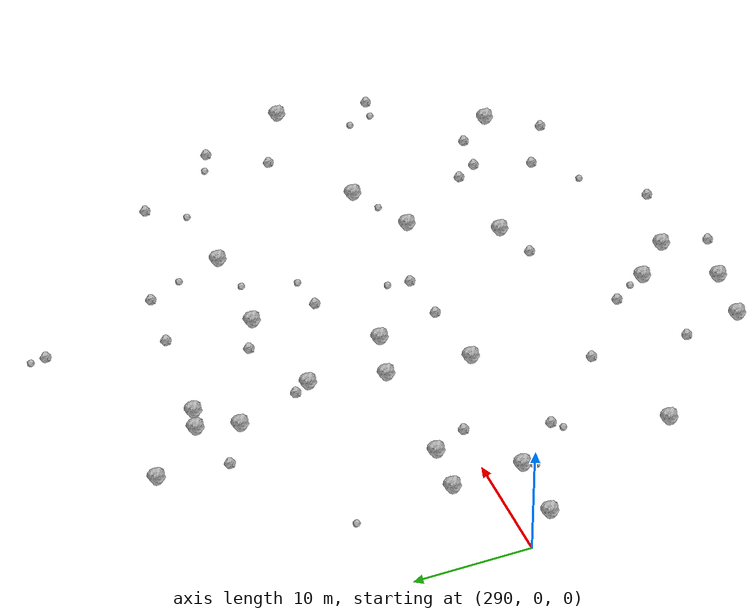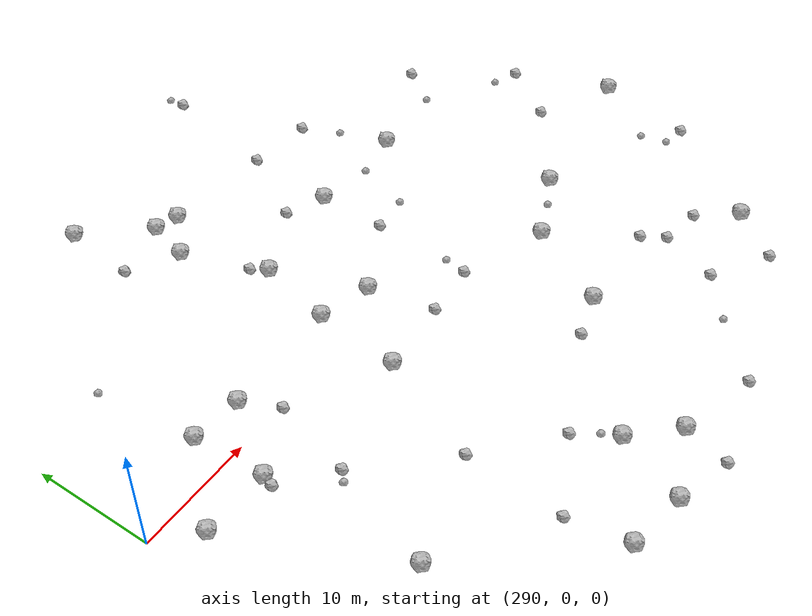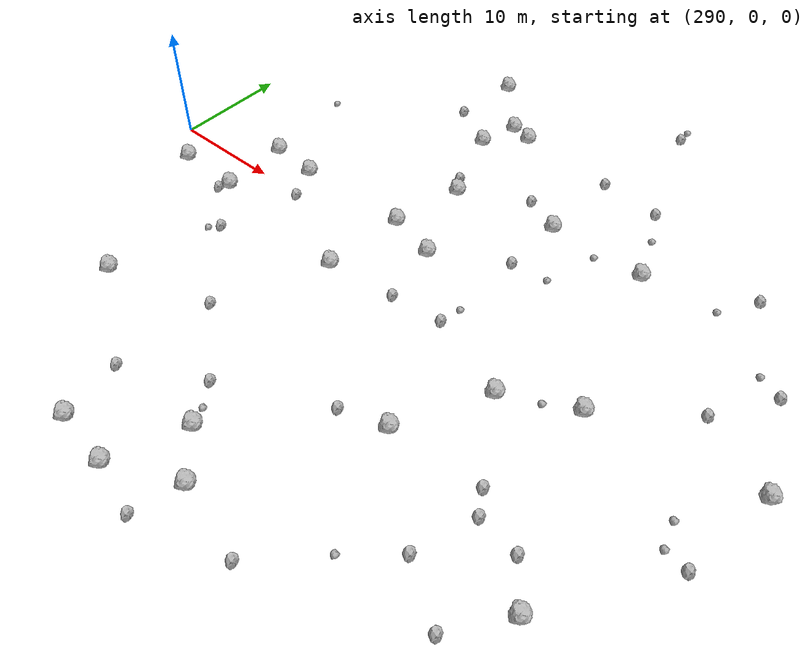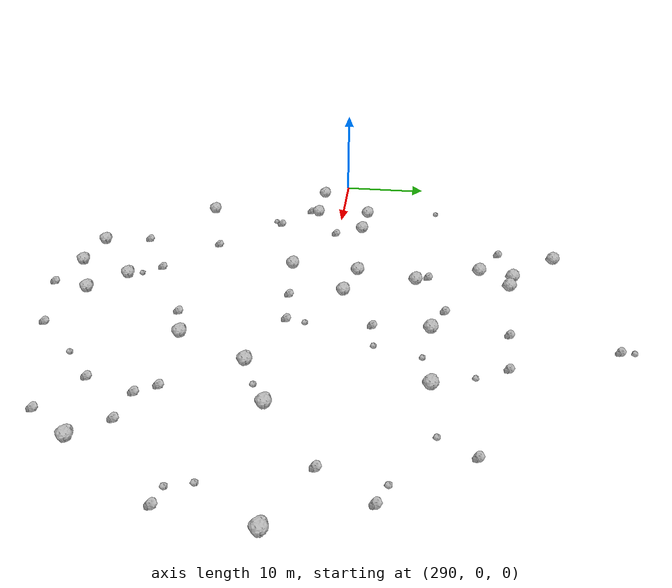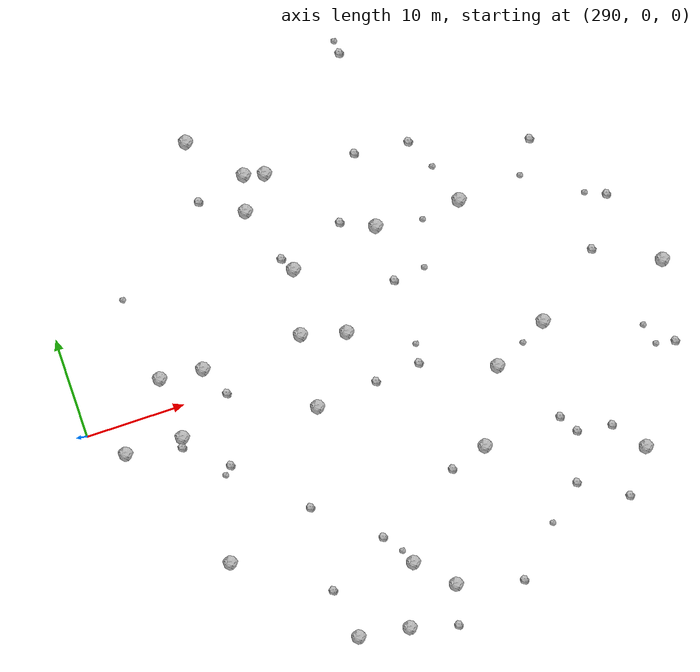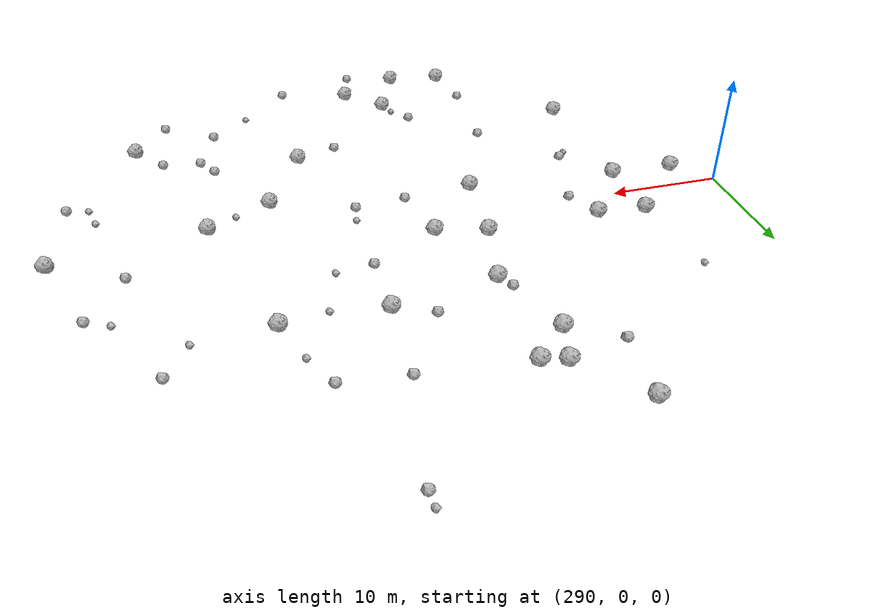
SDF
<sdf version="1.6">
 <world name="default">
  <include><uri>model://sun</uri></include>
  <model name="rock1_8_3">
   <include><uri>model://rock1</uri><pose>308.2928435918033 24.4906015053119 0.5 0 0 0</pose></include>
  </model>
  <model name="rock1_8_4">
   <include><uri>model://rock1</uri><pose>302.9310754741307 2.74379844290646 0.5 0 0 0</pose></include>
  </model>
  <model name="rock1_8_5">
   <include><uri>model://rock1</uri><pose>312.7066059868275 19.63387637486052 0.5 0 0 0</pose></include>
  </model>
  <model name="rock1_8_6">
   <include><uri>model://rock1</uri><pose>314.31221424652705 -27.74612029267599 0.5 0 0 0</pose></include>
  </model>
  <model name="rock1_8_7">
   <include><uri>model://rock1</uri><pose>341.9338084170256 -18.124812866374022 0.5 0 0 0</pose></include>
  </model>
  <model name="rock1_8_8">
   <include><uri>model://rock1</uri><pose>332.08805588267217 10.681457864764297 0.5 0 0 0</pose></include>
  </model>
  <model name="rock1_8_9">
   <include><uri>model://rock1</uri><pose>298.91569470131196 -3.015329568483917 0.5 0 0 0</pose></include>
  </model>
  <model name="rock1_8_10">
   <include><uri>model://rock1</uri><pose>312.49075542065395 -4.314906428330566 0.5 0 0 0</pose></include>
  </model>
  <model name="rock1_8_11">
   <include><uri>model://rock1</uri><pose>314.4663918803542 9.263519029746504 0.5 0 0 0</pose></include>
  </model>
  <model name="rock1_8_12">
   <include><uri>model://rock1</uri><pose>326.92363327209296 -13.124052686558922 0.5 0 0 0</pose></include>
  </model>
  <model name="rock1_8_13">
   <include><uri>model://rock1</uri><pose>317.50957080418715 1.7511987251286207 0.5 0 0 0</pose></include>
  </model>
  <model name="rock1_8_14">
   <include><uri>model://rock1</uri><pose>299.54900857468135 -16.186939449068007 0.5 0 0 0</pose></include>
  </model>
  <model name="rock1_8_15">
   <include><uri>model://rock1</uri><pose>319.974379643985 -25.118375658600538 0.5 0 0 0</pose></include>
  </model>
  <model name="rock1_8_16">
   <include><uri>model://rock1</uri><pose>314.70755754873323 19.10720751096705 0.5 0 0 0</pose></include>
  </model>
  <model name="rock1_8_17">
   <include><uri>model://rock1</uri><pose>309.2559422196445 -27.038011312216902 0.5 0 0 0</pose></include>
  </model>
  <model name="rock1_8_18">
   <include><uri>model://rock1</uri><pose>293.11816797551586 -2.814021846695802 0.5 0 0 0</pose></include>
  </model>
  <model name="rock1_8_19">
   <include><uri>model://rock1</uri><pose>349.2605875771792 -1.1557242147972993 0.5 0 0 0</pose></include>
  </model>
  <model name="rock1_8_20">
   <include><uri>model://rock1</uri><pose>311.7578674256081 16.164536716495192 0.5 0 0 0</pose></include>
  </model>
  <model name="rock1_8_21">
   <include><uri>model://rock1</uri><pose>313.10771657311005 2.942122801819295 0.5 0 0 0</pose></include>
  </model>
  <model name="rock1_8_22">
   <include><uri>model://rock1</uri><pose>298.6044073701163 3.1555164042015846 0.5 0 0 0</pose></include>
  </model>
  <model name="rock1_8_23">
   <include><uri>model://rock1</uri><pose>323.48834025636916 10.783277528699188 0.5 0 0 0</pose></include>
  </model>
  <model name="rock1_8_24">
   <include><uri>model://rock1</uri><pose>316.6404984117286 -21.779547551385033 0.5 0 0 0</pose></include>
  </model>
  <model name="rock1_8_25">
   <include><uri>model://rock1</uri><pose>330.56101379381334 -6.0246320316484585 0.5 0 0 0</pose></include>
  </model>
  <model name="rock1_8_26">
   <include><uri>model://rock1</uri><pose>336.19825006467516 -3.2467394095113207 0.5 0 0 0</pose></include>
  </model>
  <model name="rock2_8_0">
   <include><uri>model://rock2</uri><pose>323.1587720351487 -14.294257781226689 0.3 0 0 0</pose></include>
  </model>
  <model name="rock2_8_1">
   <include><uri>model://rock2</uri><pose>338.9299288586186 -22.22743180280934 0.3 0 0 0</pose></include>
  </model>
  <model name="rock2_8_2">
   <include><uri>model://rock2</uri><pose>320.21832959508987 12.233274818591362 0.3 0 0 0</pose></include>
  </model>
  <model name="rock2_8_3">
   <include><uri>model://rock2</uri><pose>304.3941846073579 -0.2752214818579368 0.3 0 0 0</pose></include>
  </model>
  <model name="rock2_8_4">
   <include><uri>model://rock2</uri><pose>302.53835806143474 -7.1282126245030994 0.3 0 0 0</pose></include>
  </model>
  <model name="rock2_8_5">
   <include><uri>model://rock2</uri><pose>335.97618044468334 -14.556978935521954 0.3 0 0 0</pose></include>
  </model>
  <model name="rock2_8_6">
   <include><uri>model://rock2</uri><pose>318.7141034377525 -3.758645633613291 0.3 0 0 0</pose></include>
  </model>
  <model name="rock2_8_7">
   <include><uri>model://rock2</uri><pose>339.4355347005508 -15.076001281984484 0.3 0 0 0</pose></include>
  </model>
  <model name="rock2_8_8">
   <include><uri>model://rock2</uri><pose>307.6453787751446 18.50843292782644 0.3 0 0 0</pose></include>
  </model>
  <model name="rock2_8_9">
   <include><uri>model://rock2</uri><pose>334.8284165797963 -12.708062143579394 0.3 0 0 0</pose></include>
  </model>
  <model name="rock2_8_10">
   <include><uri>model://rock2</uri><pose>318.94035621454 -29.03065797705915 0.3 0 0 0</pose></include>
  </model>
  <model name="rock2_8_11">
   <include><uri>model://rock2</uri><pose>314.58100297727304 -18.52024604226376 0.3 0 0 0</pose></include>
  </model>
  <model name="rock2_8_12">
   <include><uri>model://rock2</uri><pose>329.11831075067994 17.686776247927675 0.3 0 0 0</pose></include>
  </model>
  <model name="rock2_8_13">
   <include><uri>model://rock2</uri><pose>334.3672470228272 -19.378482875867103 0.3 0 0 0</pose></include>
  </model>
  <model name="rock2_8_14">
   <include><uri>model://rock2</uri><pose>326.4668413656617 -26.841073712565866 0.3 0 0 0</pose></include>
  </model>
  <model name="rock2_8_15">
   <include><uri>model://rock2</uri><pose>308.702645875763 -13.51337899854811 0.3 0 0 0</pose></include>
  </model>
  <model name="rock2_8_16">
   <include><uri>model://rock2</uri><pose>340.5637443877488 14.236881005835137 0.3 0 0 0</pose></include>
  </model>
  <model name="rock2_8_17">
   <include><uri>model://rock2</uri><pose>298.58189135676275 -3.95851006650501 0.3 0 0 0</pose></include>
  </model>
  <model name="rock2_8_18">
   <include><uri>model://rock2</uri><pose>323.28745631862085 -3.349268446499668 0.3 0 0 0</pose></include>
  </model>
  <model name="rock2_8_19">
   <include><uri>model://rock2</uri><pose>325.3940911757371 28.120607983607805 0.3 0 0 0</pose></include>
  </model>
  <model name="rock2_8_20">
   <include><uri>model://rock2</uri><pose>342.9729182751808 1.9841616132328852 0.3 0 0 0</pose></include>
  </model>
  <model name="rock2_8_21">
   <include><uri>model://rock2</uri><pose>313.6258363684952 10.626704796778156 0.3 0 0 0</pose></include>
  </model>
  <model name="rock2_8_22">
   <include><uri>model://rock2</uri><pose>323.7023292789807 18.257083180793224 0.3 0 0 0</pose></include>
  </model>
  <model name="rock2_8_23">
   <include><uri>model://rock2</uri><pose>347.94731659806604 -9.165048764550015 0.3 0 0 0</pose></include>
  </model>
  <model name="rock2_8_24">
   <include><uri>model://rock2</uri><pose>308.2760212501191 -21.962992590783312 0.3 0 0 0</pose></include>
  </model>
  <model name="rock2_8_25">
   <include><uri>model://rock2</uri><pose>323.5323400649799 5.138719579641062 0.3 0 0 0</pose></include>
  </model>
  <model name="rock2_8_26">
   <include><uri>model://rock2</uri><pose>346.0615084133805 6.677933952993897 0.3 0 0 0</pose></include>
  </model>
  <model name="rock3_8_0">
   <include><uri>model://rock3</uri><pose>346.0340267105564 -8.848800933158842 0.2 0 0 0</pose></include>
  </model>
  <model name="rock3_8_1">
   <include><uri>model://rock3</uri><pose>325.26413971949796 29.408837105507104 0.2 0 0 0</pose></include>
  </model>
  <model name="rock3_8_2">
   <include><uri>model://rock3</uri><pose>345.43371840858583 -6.707194465179288 0.2 0 0 0</pose></include>
  </model>
  <model name="rock3_8_3">
   <include><uri>model://rock3</uri><pose>323.57778813302815 -1.4744137308900633 0.2 0 0 0</pose></include>
  </model>
  <model name="rock3_8_4">
   <include><uri>model://rock3</uri><pose>301.7609378332889 -7.9032749828838185 0.2 0 0 0</pose></include>
  </model>
  <model name="rock3_8_5">
   <include><uri>model://rock3</uri><pose>315.9508088509621 -20.396764853903385 0.2 0 0 0</pose></include>
  </model>
  <model name="rock3_8_6">
   <include><uri>model://rock3</uri><pose>344.03794599780815 7.49194583718387 0.2 0 0 0</pose></include>
  </model>
  <model name="rock3_8_7">
   <include><uri>model://rock3</uri><pose>338.5303257277665 11.098633784470422 0.2 0 0 0</pose></include>
  </model>
  <model name="rock3_8_8">
   <include><uri>model://rock3</uri><pose>297.50947047229056 11.657296382100938 0.2 0 0 0</pose></include>
  </model>
  <model name="rock3_8_9">
   <include><uri>model://rock3</uri><pose>328.06698007075744 9.974333685693793 0.2 0 0 0</pose></include>
  </model>
  <model name="rock3_8_10">
   <include><uri>model://rock3</uri><pose>330.85410933607426 -22.414709521730664 0.2 0 0 0</pose></include>
  </model>
  <model name="rock3_8_11">
   <include><uri>model://rock3</uri><pose>326.7276252739868 5.422951561925373 0.2 0 0 0</pose></include>
  </model>
  <model name="rock3_8_12">
   <include><uri>model://rock3</uri><pose>330.5923482421492 14.635381103441695 0.2 0 0 0</pose></include>
  </model>
  <model name="rock3_8_13">
   <include><uri>model://rock3</uri><pose>333.6246543726573 -4.661870729233129 0.2 0 0 0</pose></include>
  </model>
 </world>
</sdf>
